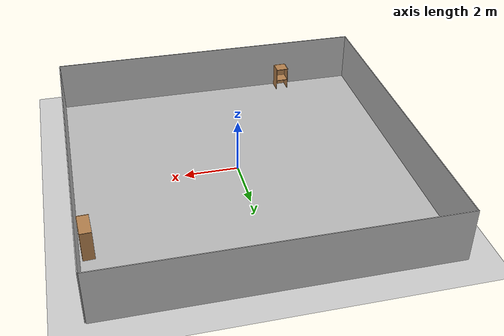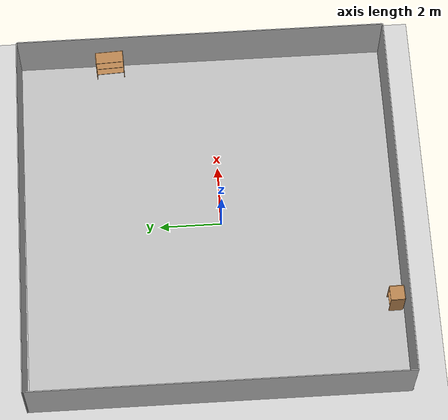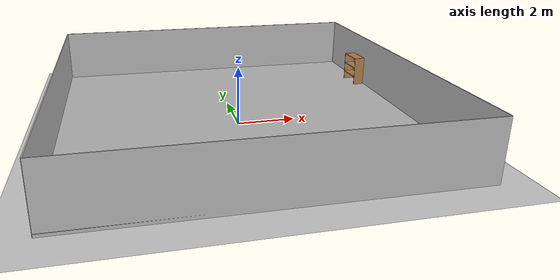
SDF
<sdf version="1.7">
 <world name="default">
  <light name="sun" type="directional">
   <pose>0 0 10 0 -0 0</pose>
   <diffuse>0.8 0.8 0.8 1</diffuse>
   <specular>0.2 0.2 0.2 1</specular>
   <attenuation>
    <range>1000</range>
    <constant>0.9</constant>
    <linear>0.01</linear>
    <quadratic>0.001</quadratic>
   </attenuation>
   <direction>-0.5 0.1 -0.9</direction>
   <spot><inner_angle>0</inner_angle><outer_angle>0</outer_angle><falloff>0</falloff></spot>
  </light>
  <model name="ground_plane">
   <static>1</static>
   <link name="link">
    <collision name="collision">
     <geometry><plane><normal>0 0 1</normal><size>100 100</size></plane></geometry>
     <surface><friction><ode><mu>100</mu><mu2>50</mu2></ode></friction></surface>
    </collision>
    <visual name="visual">
     <cast_shadows>0</cast_shadows>
     <geometry><plane><normal>0 0 1</normal><size>100 100</size></plane></geometry>
     <material>
      <script><uri>file://media/materials/scripts/gazebo.material</uri><name>Gazebo/Grey</name></script>
     </material>
    </visual>
   </link>
  </model>
  <gravity>0 0 -9.8</gravity>
  <magnetic_field>6e-06 2.3e-05 -4.2e-05</magnetic_field>
  <atmosphere type="adiabatic"/>
  <physics type="ode">
   <max_step_size>0.001</max_step_size>
   <real_time_factor>1</real_time_factor>
   <real_time_update_rate>1000</real_time_update_rate>
  </physics>
  <scene><ambient>0.4 0.4 0.4 1</ambient><background>0.7 0.7 0.7 1</background><shadows>1</shadows></scene>
  <audio><device>default</device></audio>
  <spherical_coordinates>
   <surface_model>EARTH_WGS84</surface_model>
   <latitude_deg>0</latitude_deg>
   <longitude_deg>0</longitude_deg>
   <elevation>0</elevation>
   <heading_deg>0</heading_deg>
  </spherical_coordinates>
  <model name="maze_plane">
   <link name="maze_plane_link">
    <inertial>
     <mass>1</mass>
     <inertia>
      <ixx>0.166667</ixx>
      <ixy>0</ixy>
      <ixz>0</ixz>
      <iyy>0.166667</iyy>
      <iyz>0</iyz>
      <izz>0.166667</izz>
     </inertia>
     <pose>0 0 0.1 0 -0 0</pose>
    </inertial>
    <visual name="visual">
     <pose>0 0 0.1 0 -0 0</pose>
     <geometry><mesh><uri>model://maze_plane/meshes/maze_plane.dae</uri><scale>1 1 1</scale></mesh></geometry>
     <material>
      <script>
       <uri>model://maze_plane/materials/scripts/</uri>
       <uri>model://maze_plane/materials/textures/</uri>
       <name>maze/Diffuse</name>
      </script>
     </material>
    </visual>
    <collision name="collision">
     <pose>0 0 0.1 0 -0 0</pose>
     <geometry><mesh><uri>model://maze_plane/meshes/maze_plane.dae</uri><scale>1 1 1</scale></mesh></geometry>
     <surface>
      <friction>
       <ode><mu>1</mu><mu2>1</mu2><fdir1>0 0 0</fdir1><slip1>0</slip1><slip2>0</slip2></ode>
       <torsional>
        <coefficient>1</coefficient>
        <patch_radius>0</patch_radius>
        <surface_radius>0</surface_radius>
        <use_patch_radius>1</use_patch_radius>
        <ode><slip>0</slip></ode>
       </torsional>
      </friction>
      <bounce><restitution_coefficient>0</restitution_coefficient><threshold>1e+06</threshold></bounce>
      <contact>
       <collide_without_contact>0</collide_without_contact>
       <collide_without_contact_bitmask>1</collide_without_contact_bitmask>
       <collide_bitmask>1</collide_bitmask>
       <ode>
        <soft_cfm>0</soft_cfm>
        <soft_erp>0.2</soft_erp>
        <kp>1e+13</kp>
        <kd>1</kd>
        <max_vel>0.01</max_vel>
        <min_depth>0</min_depth>
       </ode>
       <bullet>
        <split_impulse>1</split_impulse>
        <split_impulse_penetration_threshold>-0.01</split_impulse_penetration_threshold>
        <soft_cfm>0</soft_cfm>
        <soft_erp>0.2</soft_erp>
        <kp>1e+13</kp>
        <kd>1</kd>
       </bullet>
      </contact>
     </surface>
    </collision>
   </link>
   <static>1</static>
   <pose>0.002982 0.345997 0 0 -0 0</pose>
  </model>
  <model name="wall">
   <link name="wall_link">
    <inertial>
     <mass>1</mass>
     <inertia>
      <ixx>0.166667</ixx>
      <ixy>0</ixy>
      <ixz>0</ixz>
      <iyy>0.166667</iyy>
      <iyz>0</iyz>
      <izz>0.166667</izz>
     </inertia>
    </inertial>
    <pose>-2e-06 -0 0 0 -0 0</pose>
    <visual name="visual">
     <geometry><mesh><uri>model://wall/meshes/wall.dae</uri><scale>1 1 1</scale></mesh></geometry>
     <material>
      <script>
       <uri>model://wall/materials/scripts/</uri>
       <uri>model://wall/materials/textures/</uri>
       <name>wall/Diffuse</name>
      </script>
     </material>
    </visual>
    <collision name="collision">
     <geometry><mesh><uri>model://wall/meshes/wall.dae</uri><scale>1 1 1</scale></mesh></geometry>
     <surface>
      <friction>
       <ode><mu>1</mu><mu2>1</mu2><fdir1>0 0 0</fdir1><slip1>0</slip1><slip2>0</slip2></ode>
       <torsional>
        <coefficient>1</coefficient>
        <patch_radius>0</patch_radius>
        <surface_radius>0</surface_radius>
        <use_patch_radius>1</use_patch_radius>
        <ode><slip>0</slip></ode>
       </torsional>
      </friction>
      <bounce><restitution_coefficient>0</restitution_coefficient><threshold>1e+06</threshold></bounce>
      <contact>
       <collide_without_contact>0</collide_without_contact>
       <collide_without_contact_bitmask>1</collide_without_contact_bitmask>
       <collide_bitmask>1</collide_bitmask>
       <ode>
        <soft_cfm>0</soft_cfm>
        <soft_erp>0.2</soft_erp>
        <kp>1e+13</kp>
        <kd>1</kd>
        <max_vel>0.01</max_vel>
        <min_depth>0</min_depth>
       </ode>
       <bullet>
        <split_impulse>1</split_impulse>
        <split_impulse_penetration_threshold>-0.01</split_impulse_penetration_threshold>
        <soft_cfm>0</soft_cfm>
        <soft_erp>0.2</soft_erp>
        <kp>1e+13</kp>
        <kd>1</kd>
       </bullet>
      </contact>
     </surface>
    </collision>
   </link>
   <static>1</static>
   <pose>3.30628 0.285813 0 0 -0 0</pose>
  </model>
  <model name="wall_0">
   <link name="wall_link">
    <inertial>
     <mass>1</mass>
     <inertia>
      <ixx>0.166667</ixx>
      <ixy>0</ixy>
      <ixz>0</ixz>
      <iyy>0.166667</iyy>
      <iyz>0</iyz>
      <izz>0.166667</izz>
     </inertia>
    </inertial>
    <pose>-2e-06 -0 0 0 -0 0</pose>
    <visual name="visual">
     <geometry><mesh><uri>model://wall/meshes/wall.dae</uri><scale>1 1 1</scale></mesh></geometry>
     <material>
      <script>
       <uri>model://wall/materials/scripts/</uri>
       <uri>model://wall/materials/textures/</uri>
       <name>wall/Diffuse</name>
      </script>
     </material>
    </visual>
    <collision name="collision">
     <geometry><mesh><uri>model://wall/meshes/wall.dae</uri><scale>1 1 1</scale></mesh></geometry>
     <surface>
      <friction>
       <ode><mu>1</mu><mu2>1</mu2><fdir1>0 0 0</fdir1><slip1>0</slip1><slip2>0</slip2></ode>
       <torsional>
        <coefficient>1</coefficient>
        <patch_radius>0</patch_radius>
        <surface_radius>0</surface_radius>
        <use_patch_radius>1</use_patch_radius>
        <ode><slip>0</slip></ode>
       </torsional>
      </friction>
      <bounce><restitution_coefficient>0</restitution_coefficient><threshold>1e+06</threshold></bounce>
      <contact>
       <collide_without_contact>0</collide_without_contact>
       <collide_without_contact_bitmask>1</collide_without_contact_bitmask>
       <collide_bitmask>1</collide_bitmask>
       <ode>
        <soft_cfm>0</soft_cfm>
        <soft_erp>0.2</soft_erp>
        <kp>1e+13</kp>
        <kd>1</kd>
        <max_vel>0.01</max_vel>
        <min_depth>0</min_depth>
       </ode>
       <bullet>
        <split_impulse>1</split_impulse>
        <split_impulse_penetration_threshold>-0.01</split_impulse_penetration_threshold>
        <soft_cfm>0</soft_cfm>
        <soft_erp>0.2</soft_erp>
        <kp>1e+13</kp>
        <kd>1</kd>
       </bullet>
      </contact>
     </surface>
    </collision>
   </link>
   <static>1</static>
   <pose>-0.051208 -2.95233 0 0 0 -1.57641</pose>
  </model>
  <model name="wall_1">
   <link name="wall_link">
    <inertial>
     <mass>1</mass>
     <inertia>
      <ixx>0.166667</ixx>
      <ixy>0</ixy>
      <ixz>0</ixz>
      <iyy>0.166667</iyy>
      <iyz>0</iyz>
      <izz>0.166667</izz>
     </inertia>
    </inertial>
    <pose>-2e-06 -0 0 0 -0 0</pose>
    <visual name="visual">
     <geometry><mesh><uri>model://wall/meshes/wall.dae</uri><scale>1 1 1</scale></mesh></geometry>
     <material>
      <script>
       <uri>model://wall/materials/scripts/</uri>
       <uri>model://wall/materials/textures/</uri>
       <name>wall/Diffuse</name>
      </script>
     </material>
    </visual>
    <collision name="collision">
     <geometry><mesh><uri>model://wall/meshes/wall.dae</uri><scale>1 1 1</scale></mesh></geometry>
     <surface>
      <friction>
       <ode><mu>1</mu><mu2>1</mu2><fdir1>0 0 0</fdir1><slip1>0</slip1><slip2>0</slip2></ode>
       <torsional>
        <coefficient>1</coefficient>
        <patch_radius>0</patch_radius>
        <surface_radius>0</surface_radius>
        <use_patch_radius>1</use_patch_radius>
        <ode><slip>0</slip></ode>
       </torsional>
      </friction>
      <bounce><restitution_coefficient>0</restitution_coefficient><threshold>1e+06</threshold></bounce>
      <contact>
       <collide_without_contact>0</collide_without_contact>
       <collide_without_contact_bitmask>1</collide_without_contact_bitmask>
       <collide_bitmask>1</collide_bitmask>
       <ode>
        <soft_cfm>0</soft_cfm>
        <soft_erp>0.2</soft_erp>
        <kp>1e+13</kp>
        <kd>1</kd>
        <max_vel>0.01</max_vel>
        <min_depth>0</min_depth>
       </ode>
       <bullet>
        <split_impulse>1</split_impulse>
        <split_impulse_penetration_threshold>-0.01</split_impulse_penetration_threshold>
        <soft_cfm>0</soft_cfm>
        <soft_erp>0.2</soft_erp>
        <kp>1e+13</kp>
        <kd>1</kd>
       </bullet>
      </contact>
     </surface>
    </collision>
   </link>
   <static>1</static>
   <pose>-8.69718 0.314871 0 0 -0 0</pose>
  </model>
  <model name="wall_2">
   <link name="wall_link">
    <inertial>
     <mass>1</mass>
     <inertia>
      <ixx>0.166667</ixx>
      <ixy>0</ixy>
      <ixz>0</ixz>
      <iyy>0.166667</iyy>
      <iyz>0</iyz>
      <izz>0.166667</izz>
     </inertia>
    </inertial>
    <pose>-2e-06 -0 0 0 -0 0</pose>
    <visual name="visual">
     <geometry><mesh><uri>model://wall/meshes/wall.dae</uri><scale>1 1 1</scale></mesh></geometry>
     <material>
      <script>
       <uri>model://wall/materials/scripts/</uri>
       <uri>model://wall/materials/textures/</uri>
       <name>wall/Diffuse</name>
      </script>
     </material>
    </visual>
    <collision name="collision">
     <geometry><mesh><uri>model://wall/meshes/wall.dae</uri><scale>1 1 1</scale></mesh></geometry>
     <surface>
      <friction>
       <ode><mu>1</mu><mu2>1</mu2><fdir1>0 0 0</fdir1><slip1>0</slip1><slip2>0</slip2></ode>
       <torsional>
        <coefficient>1</coefficient>
        <patch_radius>0</patch_radius>
        <surface_radius>0</surface_radius>
        <use_patch_radius>1</use_patch_radius>
        <ode><slip>0</slip></ode>
       </torsional>
      </friction>
      <bounce><restitution_coefficient>0</restitution_coefficient><threshold>1e+06</threshold></bounce>
      <contact>
       <collide_without_contact>0</collide_without_contact>
       <collide_without_contact_bitmask>1</collide_without_contact_bitmask>
       <collide_bitmask>1</collide_bitmask>
       <ode>
        <soft_cfm>0</soft_cfm>
        <soft_erp>0.2</soft_erp>
        <kp>1e+13</kp>
        <kd>1</kd>
        <max_vel>0.01</max_vel>
        <min_depth>0</min_depth>
       </ode>
       <bullet>
        <split_impulse>1</split_impulse>
        <split_impulse_penetration_threshold>-0.01</split_impulse_penetration_threshold>
        <soft_cfm>0</soft_cfm>
        <soft_erp>0.2</soft_erp>
        <kp>1e+13</kp>
        <kd>1</kd>
       </bullet>
      </contact>
     </surface>
    </collision>
   </link>
   <static>1</static>
   <pose>0.029696 3.6975 0 0 -0 1.56759</pose>
  </model>
  <model name="bookshelf">
   <static>1</static>
   <link name="link">
    <inertial><mass>1</mass></inertial>
    <collision name="back">
     <pose>0 0.005 0.6 0 -0 0</pose>
     <geometry><box><size>0.9 0.01 1.2</size></box></geometry>
    </collision>
    <visual name="visual1">
     <pose>0 0.005 0.6 0 -0 0</pose>
     <geometry><box><size>0.9 0.01 1.2</size></box></geometry>
     <material>
      <script><uri>file://media/materials/scripts/gazebo.material</uri><name>Gazebo/Wood</name></script>
     </material>
    </visual>
    <collision name="left_side">
     <pose>0.45 -0.195 0.6 0 -0 0</pose>
     <geometry><box><size>0.02 0.4 1.2</size></box></geometry>
    </collision>
    <visual name="visual2">
     <pose>0.45 -0.195 0.6 0 -0 0</pose>
     <geometry><box><size>0.02 0.4 1.2</size></box></geometry>
     <material>
      <script><uri>file://media/materials/scripts/gazebo.material</uri><name>Gazebo/Wood</name></script>
     </material>
    </visual>
    <collision name="right_side">
     <pose>-0.45 -0.195 0.6 0 -0 0</pose>
     <geometry><box><size>0.02 0.4 1.2</size></box></geometry>
    </collision>
    <visual name="visual3">
     <pose>-0.45 -0.195 0.6 0 -0 0</pose>
     <geometry><box><size>0.02 0.4 1.2</size></box></geometry>
     <material>
      <script><uri>file://media/materials/scripts/gazebo.material</uri><name>Gazebo/Wood</name></script>
     </material>
    </visual>
    <collision name="bottom">
     <pose>0 -0.195 0.03 0 -0 0</pose>
     <geometry><box><size>0.88 0.4 0.06</size></box></geometry>
    </collision>
    <visual name="visual4">
     <pose>0 -0.195 0.03 0 -0 0</pose>
     <geometry><box><size>0.88 0.4 0.06</size></box></geometry>
     <material>
      <script><uri>file://media/materials/scripts/gazebo.material</uri><name>Gazebo/Wood</name></script>
     </material>
    </visual>
    <collision name="top">
     <pose>0 -0.195 1.19 0 -0 0</pose>
     <geometry><box><size>0.88 0.4 0.02</size></box></geometry>
    </collision>
    <visual name="visual5">
     <pose>0 -0.195 1.19 0 -0 0</pose>
     <geometry><box><size>0.88 0.4 0.02</size></box></geometry>
     <material>
      <script><uri>file://media/materials/scripts/gazebo.material</uri><name>Gazebo/Wood</name></script>
     </material>
    </visual>
    <collision name="low_shelf">
     <pose>0 -0.195 0.43 0 -0 0</pose>
     <geometry><box><size>0.88 0.4 0.02</size></box></geometry>
    </collision>
    <visual name="visual6">
     <pose>0 -0.195 0.43 0 -0 0</pose>
     <geometry><box><size>0.88 0.4 0.02</size></box></geometry>
     <material>
      <script><uri>file://media/materials/scripts/gazebo.material</uri><name>Gazebo/Wood</name></script>
     </material>
    </visual>
    <collision name="high_shelf">
     <pose>0 -0.195 0.8 0 -0 0</pose>
     <geometry><box><size>0.88 0.4 0.02</size></box></geometry>
    </collision>
    <visual name="visual7">
     <pose>0 -0.195 0.8 0 -0 0</pose>
     <geometry><box><size>0.88 0.4 0.02</size></box></geometry>
     <material>
      <script><uri>file://media/materials/scripts/gazebo.material</uri><name>Gazebo/Wood</name></script>
     </material>
    </visual>
   </link>
   <pose>5.91166 3.3791 0 0 0 -1.52419</pose>
  </model>
  <model name="cabinet">
   <static>1</static>
   <link name="cabinet_bottom_plate">
    <inertial>
     <pose>0 0 -1 0 -0 0</pose>
     <inertia><ixx>2.05</ixx><ixy>0</ixy><ixz>0</ixz><iyy>2.05</iyy><iyz>0</iyz><izz>2.05</izz></inertia>
     <mass>25</mass>
    </inertial>
    <collision name="cabinet_bottom_plate_geom">
     <pose>0 0 0.01 0 -0 0</pose>
     <geometry><box><size>0.45 0.45 0.02</size></box></geometry>
    </collision>
    <visual name="cabinet_bottom_plate_geom_visual">
     <pose>0 0 0.01 0 -0 0</pose>
     <geometry><box><size>0.45 0.45 0.02</size></box></geometry>
     <material>
      <script><uri>file://media/materials/scripts/gazebo.material</uri><name>Gazebo/Wood</name></script>
     </material>
    </visual>
    <collision name="cabinet_bottom_plate_geom_cabinet_back_plate">
     <pose>0.235 0 0.51 0 -0 0</pose>
     <geometry><box><size>0.02 0.45 1.02</size></box></geometry>
    </collision>
    <visual name="cabinet_bottom_plate_geom_cabinet_back_plate_visual">
     <pose>0.235 0 0.51 0 -0 0</pose>
     <geometry><box><size>0.02 0.45 1.02</size></box></geometry>
     <material>
      <script><uri>file://media/materials/scripts/gazebo.material</uri><name>Gazebo/Wood</name></script>
     </material>
    </visual>
    <collision name="cabinet_bottom_plate_geom_cabinet_left_plate">
     <pose>0 0.235 0.51 0 -0 0</pose>
     <geometry><box><size>0.45 0.02 1.02</size></box></geometry>
    </collision>
    <visual name="cabinet_bottom_plate_geom_cabinet_left_plate_visual">
     <pose>0 0.235 0.51 0 -0 0</pose>
     <geometry><box><size>0.45 0.02 1.02</size></box></geometry>
     <material>
      <script><uri>file://media/materials/scripts/gazebo.material</uri><name>Gazebo/Wood</name></script>
     </material>
    </visual>
    <collision name="cabinet_bottom_plate_geom_cabinet_middle_plate">
     <pose>0 0 0.51 0 -0 0</pose>
     <geometry><box><size>0.45 0.45 0.02</size></box></geometry>
    </collision>
    <visual name="cabinet_bottom_plate_geom_cabinet_middle_plate_visual">
     <pose>0 0 0.51 0 -0 0</pose>
     <geometry><box><size>0.45 0.45 0.02</size></box></geometry>
     <material>
      <script><uri>file://media/materials/scripts/gazebo.material</uri><name>Gazebo/Wood</name></script>
     </material>
    </visual>
    <collision name="cabinet_bottom_plate_geom_cabinet_right_plate">
     <pose>0 -0.235 0.51 0 -0 0</pose>
     <geometry><box><size>0.45 0.02 1.02</size></box></geometry>
    </collision>
    <visual name="cabinet_bottom_plate_geom_cabinet_right_plate_visual">
     <pose>0 -0.235 0.51 0 -0 0</pose>
     <geometry><box><size>0.45 0.02 1.02</size></box></geometry>
     <material>
      <script><uri>file://media/materials/scripts/gazebo.material</uri><name>Gazebo/Wood</name></script>
     </material>
    </visual>
    <collision name="cabinet_bottom_plate_geom_cabinet_top_plate">
     <pose>0 0 1.01 0 -0 0</pose>
     <geometry><box><size>0.45 0.45 0.02</size></box></geometry>
    </collision>
    <visual name="cabinet_bottom_plate_geom_cabinet_top_plate_visual">
     <pose>0 0 1.01 0 -0 0</pose>
     <geometry><box><size>0.45 0.45 0.02</size></box></geometry>
     <material>
      <script><uri>file://media/materials/scripts/gazebo.material</uri><name>Gazebo/Wood</name></script>
     </material>
    </visual>
   </link>
   <pose>-3.10302 -5.33977 0 0 0 -1.54961</pose>
  </model>
 </world>
</sdf>
